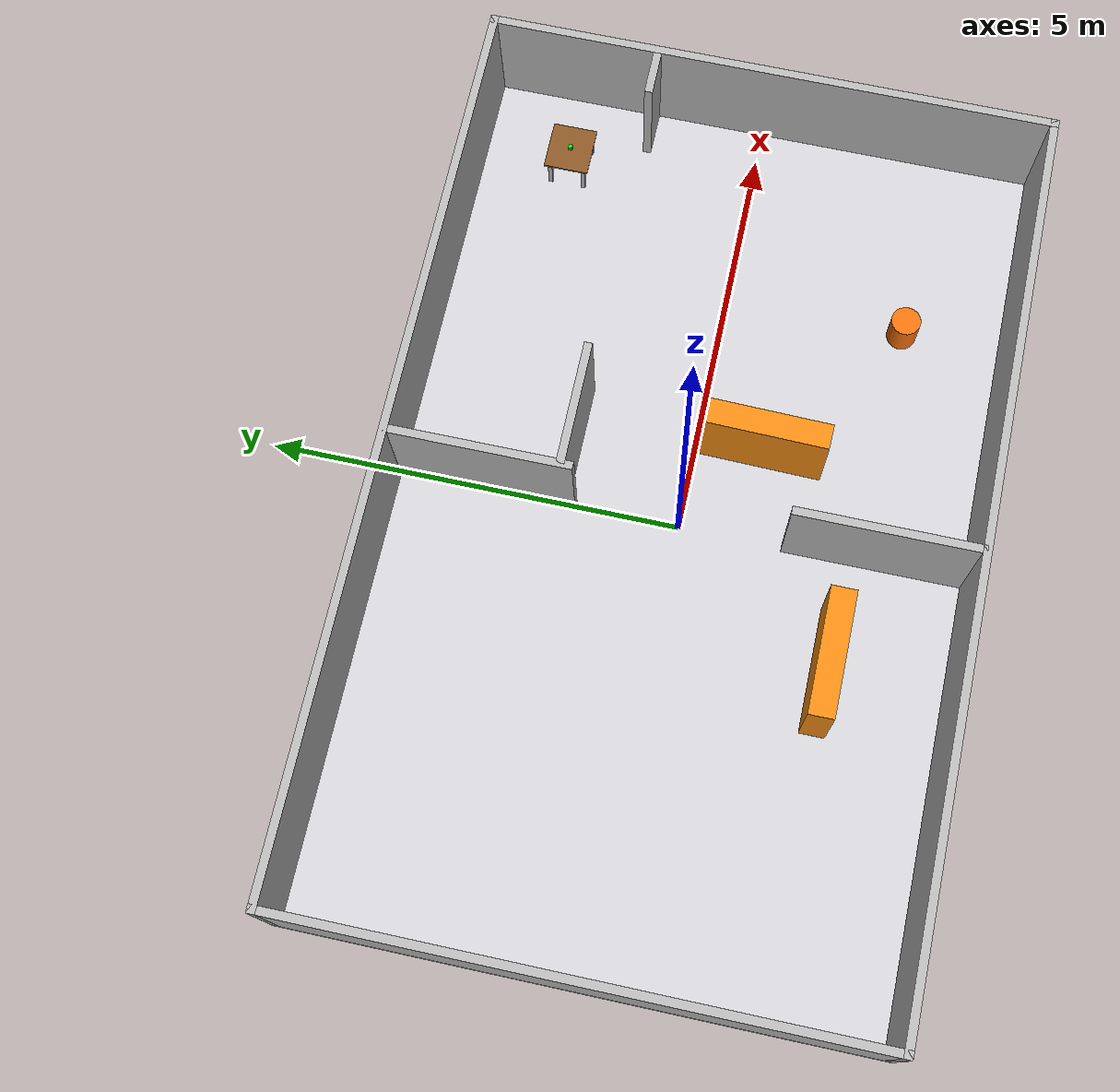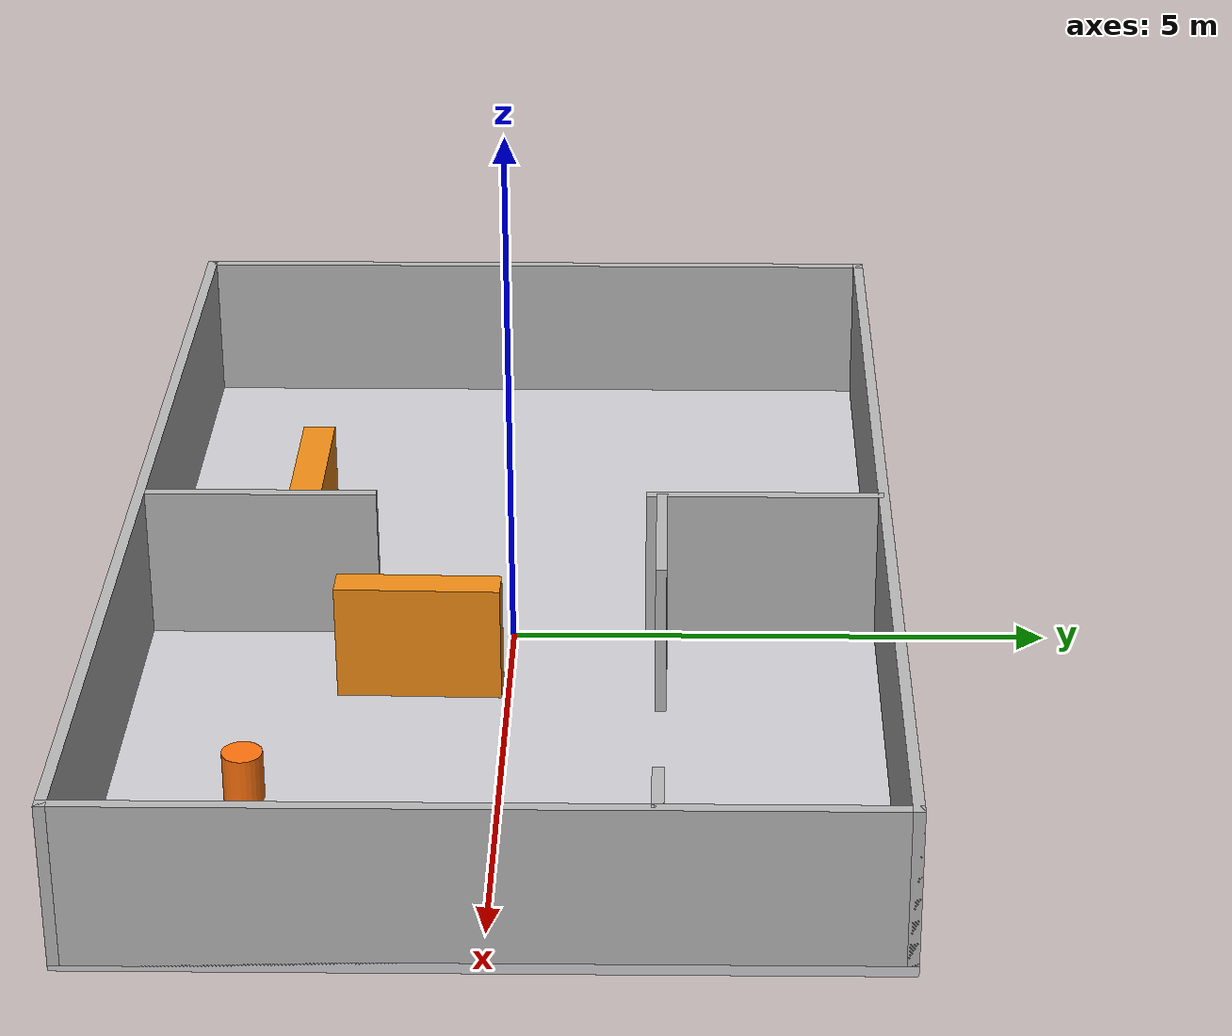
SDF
<?xml version="1.0"?>
<sdf version="1.6">
  <world name="floor1_navigation_course_obstacles">
    <plugin name="gazebo_ros_state" filename="libgazebo_ros_state.so">
      <ros><namespace>/gazebo</namespace></ros><update_rate>50.0</update_rate>
    </plugin>
    <gui fullscreen="false"><camera name="floor_overview">
      <pose>-5 -7 8 0 0.65 0.72</pose><view_controller>orbit</view_controller>
    </camera></gui>
    <physics name="ode" type="ode"><max_step_size>0.005</max_step_size>
      <real_time_update_rate>200</real_time_update_rate>
      <ode><solver><type>quick</type><iters>100</iters><sor>1.0</sor></solver></ode>
    </physics>
    <gravity>0 0 -9.81</gravity>
    <include><uri>model://sun</uri></include>
    <model name="floor"><static>true</static><link name="link">
      <collision name="collision"><geometry><box><size>11 7 0.10</size></box></geometry></collision>
      <visual name="visual"><geometry><box><size>11 7 0.10</size></box></geometry>
        <material><ambient>0.70 0.70 0.72 1</ambient><diffuse>0.82 0.82 0.84 1</diffuse></material></visual>
    </link></model>

    <!-- Outer shell and two interior wall sections create a small one-floor
         office route with wide doorways suitable for the quadruped. -->
    <model name="walls"><static>true</static><link name="link">
      <collision name="north"><pose>0 3.45 0.75 0 0 0</pose><geometry><box><size>11 .10 1.5</size></box></geometry></collision>
      <collision name="south"><pose>0 -3.45 0.75 0 0 0</pose><geometry><box><size>11 .10 1.5</size></box></geometry></collision>
      <collision name="west"><pose>-5.45 0 0.75 0 0 0</pose><geometry><box><size>.10 7 1.5</size></box></geometry></collision>
      <collision name="east"><pose>5.45 0 0.75 0 0 0</pose><geometry><box><size>.10 7 1.5</size></box></geometry></collision>
      <collision name="partition_a"><pose>0 -2.35 0.75 0 0 0</pose><geometry><box><size>.10 2.2 1.5</size></box></geometry></collision>
      <collision name="partition_b"><pose>0 2.35 0.75 0 0 0</pose><geometry><box><size>.10 2.2 1.5</size></box></geometry></collision>
      <collision name="partition_c"><pose>.75 1.40 0.75 0 0 0</pose><geometry><box><size>1.5 .10 1.5</size></box></geometry></collision>
      <collision name="partition_d"><pose>5.15 1.40 0.75 0 0 0</pose><geometry><box><size>.6 .10 1.5</size></box></geometry></collision>
      <visual name="north_v"><pose>0 3.45 0.75 0 0 0</pose><geometry><box><size>11 .10 1.5</size></box></geometry></visual>
      <visual name="south_v"><pose>0 -3.45 0.75 0 0 0</pose><geometry><box><size>11 .10 1.5</size></box></geometry></visual>
      <visual name="west_v"><pose>-5.45 0 0.75 0 0 0</pose><geometry><box><size>.10 7 1.5</size></box></geometry></visual>
      <visual name="east_v"><pose>5.45 0 0.75 0 0 0</pose><geometry><box><size>.10 7 1.5</size></box></geometry></visual>
      <visual name="pa_v"><pose>0 -2.35 0.75 0 0 0</pose><geometry><box><size>.10 2.2 1.5</size></box></geometry></visual>
      <visual name="pb_v"><pose>0 2.35 0.75 0 0 0</pose><geometry><box><size>.10 2.2 1.5</size></box></geometry></visual>
      <visual name="pc_v"><pose>.75 1.40 0.75 0 0 0</pose><geometry><box><size>1.5 .10 1.5</size></box></geometry></visual>
      <visual name="pd_v"><pose>5.15 1.40 0.75 0 0 0</pose><geometry><box><size>.6 .10 1.5</size></box></geometry></visual>
    </link></model>

    <model name="pickup_table"><static>true</static><pose>4.45 2.30 0.496 0 0 0</pose><link name="link">
      <collision name="top"><geometry><box><size>.60 .55 .02</size></box></geometry></collision>
      <visual name="top_v"><geometry><box><size>.60 .55 .02</size></box></geometry>
        <material><ambient>.35 .22 .10 1</ambient><diffuse>.55 .34 .15 1</diffuse></material></visual>
      <collision name="l1"><pose>-.24 -.21 -.253 0 0 0</pose><geometry><box><size>.05 .05 .486</size></box></geometry></collision>
      <collision name="l2"><pose>-.24 .21 -.253 0 0 0</pose><geometry><box><size>.05 .05 .486</size></box></geometry></collision>
      <collision name="l3"><pose>.24 -.21 -.253 0 0 0</pose><geometry><box><size>.05 .05 .486</size></box></geometry></collision>
      <collision name="l4"><pose>.24 .21 -.253 0 0 0</pose><geometry><box><size>.05 .05 .486</size></box></geometry></collision>
      <visual name="l1v"><pose>-.24 -.21 -.253 0 0 0</pose><geometry><box><size>.05 .05 .486</size></box></geometry></visual>
      <visual name="l2v"><pose>-.24 .21 -.253 0 0 0</pose><geometry><box><size>.05 .05 .486</size></box></geometry></visual>
      <visual name="l3v"><pose>.24 -.21 -.253 0 0 0</pose><geometry><box><size>.05 .05 .486</size></box></geometry></visual>
      <visual name="l4v"><pose>.24 .21 -.253 0 0 0</pose><geometry><box><size>.05 .05 .486</size></box></geometry></visual>
    </link></model>
    <model name="target_cube"><static>false</static><pose>4.45 2.30 .531 0 0 0</pose><link name="body">
      <inertial><mass>.08</mass><inertia><ixx>.0000333</ixx><iyy>.0000333</iyy><izz>.0000333</izz></inertia></inertial>
      <collision name="body_collision"><surface><friction><ode><mu>3</mu><mu2>3</mu2></ode></friction>
        <contact><ode><kp>300000</kp><kd>30</kd><max_vel>.005</max_vel><min_depth>.001</min_depth></ode></contact></surface>
        <geometry><box><size>.05 .05 .05</size></box></geometry></collision>
      <visual name="body_visual"><geometry><box><size>.05 .05 .05</size></box></geometry>
        <material><ambient>.05 .75 .08 1</ambient><diffuse>.08 .95 .12 1</diffuse></material></visual>
    </link></model>

    <!-- Obstacles come from the 2D navigation playground world in
         go2_course1_projects(1): jersey barriers, brick boxes and a cone. -->
    <model name="course2d_jersey_barrier_01"><static>true</static><pose>-1.4 -2.0 0 0 0 0</pose><link name="link">
      <collision name="upright"><pose>0 0 0.5715 0 0 0</pose><geometry><box><size>1.50 0.3063 1.143</size></box></geometry></collision>
      <collision name="base"><pose>0 0 0.032258 0 0 0</pose><geometry><box><size>1.50 0.8107 0.064516</size></box></geometry></collision>
      <collision name="base2"><pose>0 0 0.1 0 0 0</pose><geometry><box><size>1.50 0.65 0.1</size></box></geometry></collision>
      <collision name="base3"><pose>0 0 0.2 0 0 0</pose><geometry><box><size>1.50 0.5 0.1</size></box></geometry></collision>
      <visual name="visual"><pose>0 0 0.5715 0 0 0</pose><geometry><box><size>1.50 0.3063 1.143</size></box></geometry><material><ambient>0.9 0.45 0.05 1</ambient><diffuse>0.95 0.55 0.08 1</diffuse></material></visual>
    </link></model>
    <model name="course2d_jersey_barrier_02"><static>true</static><pose>1.1 -0.8 0 0 0 1.54836</pose><link name="link">
      <collision name="upright"><pose>0 0 0.5715 0 0 0</pose><geometry><box><size>1.50 0.3063 1.143</size></box></geometry></collision>
      <collision name="base"><pose>0 0 0.032258 0 0 0</pose><geometry><box><size>1.50 0.8107 0.064516</size></box></geometry></collision>
      <collision name="base2"><pose>0 0 0.1 0 0 0</pose><geometry><box><size>1.50 0.65 0.1</size></box></geometry></collision>
      <collision name="base3"><pose>0 0 0.2 0 0 0</pose><geometry><box><size>1.50 0.5 0.1</size></box></geometry></collision>
      <visual name="visual"><pose>0 0 0.5715 0 0 0</pose><geometry><box><size>1.50 0.3063 1.143</size></box></geometry><material><ambient>0.9 0.45 0.05 1</ambient><diffuse>0.95 0.55 0.08 1</diffuse></material></visual>
    </link></model>
    <model name="course2d_construction_cone"><static>true</static><pose>3.0 -2.2 0 0 0 0</pose><link name="link">
      <collision name="collision"><pose>0 0 0.25 0 0 0</pose><geometry><cylinder><radius>0.18</radius><length>0.50</length></cylinder></geometry></collision>
      <visual name="visual"><pose>0 0 0.25 0 0 0</pose><geometry><cylinder><radius>0.18</radius><length>0.50</length></cylinder></geometry><material><ambient>1.0 0.35 0.02 1</ambient><diffuse>1.0 0.45 0.05 1</diffuse></material></visual>
    </link></model>
  </world>
</sdf>
